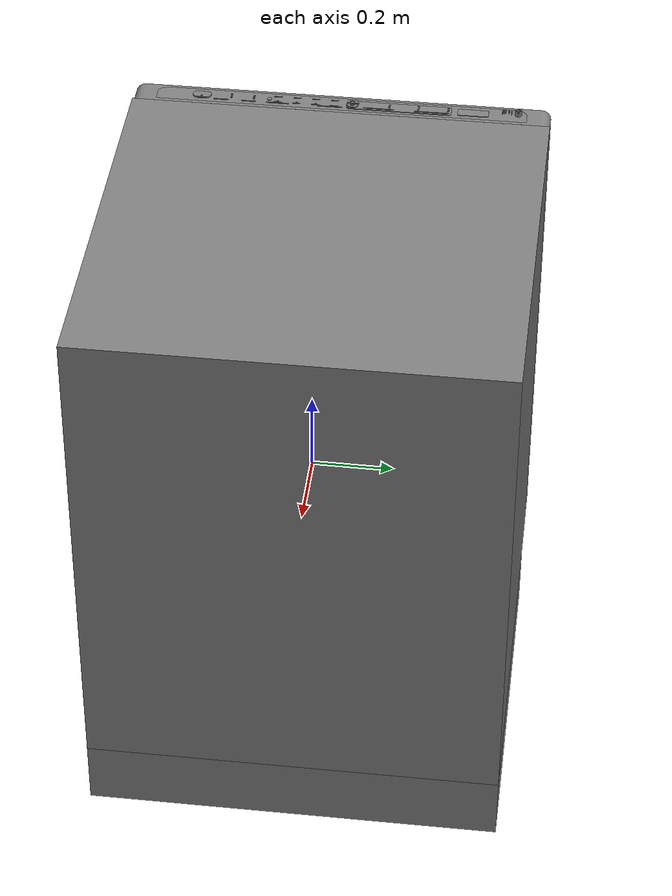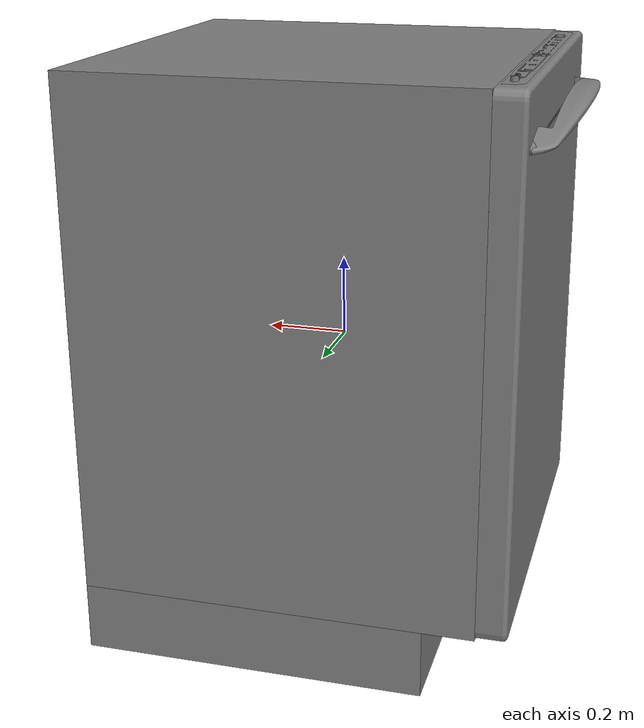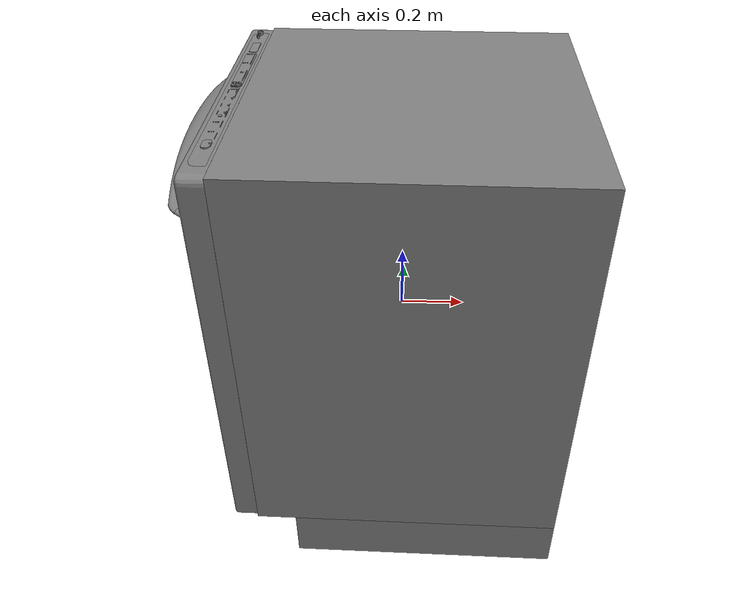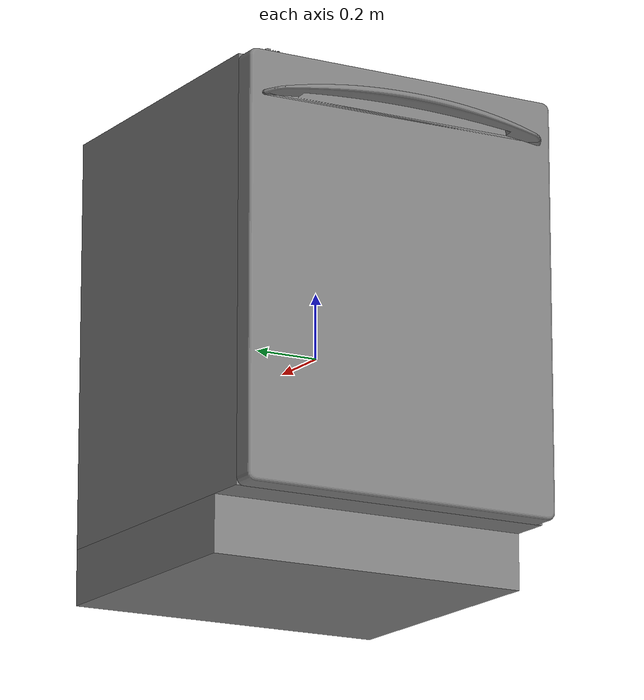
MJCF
<mujoco model="partnet_187d79cd04b2bdfddf3a1b0d597ce76e">
    <compiler angle="radian" />
    <size njmax="500" nconmax="100" />
    <option gravity="0 0 0"/>
    <asset>
        <mesh name="original-7" file="original-7.stl" />
        <mesh name="original-51" file="original-51.stl" />
        <mesh name="original-25" file="original-25.stl" />
        <mesh name="original-4" file="original-4.stl" />
        <mesh name="original-37" file="original-37.stl" />
        <mesh name="original-20" file="original-20.stl" />
        <mesh name="original-29" file="original-29.stl" />
        <mesh name="original-15" file="original-15.stl" />
        <mesh name="original-8" file="original-8.stl" />
        <mesh name="original-27" file="original-27.stl" />
        <mesh name="original-12" file="original-12.stl" />
        <mesh name="original-11" file="original-11.stl" />
        <mesh name="original-48" file="original-48.stl" />
        <mesh name="original-16" file="original-16.stl" />
        <mesh name="original-49" file="original-49.stl" />
        <mesh name="original-50" file="original-50.stl" />
        <mesh name="original-58" file="original-58.stl" />
        <mesh name="original-56" file="original-56.stl" />
        <mesh name="original-54" file="original-54.stl" />
        <mesh name="original-57" file="original-57.stl" />
        <mesh name="original-55" file="original-55.stl" />
        <mesh name="original-18" file="original-18.stl" />
        <mesh name="original-35" file="original-35.stl" />
        <mesh name="original-44" file="original-44.stl" />
        <mesh name="original-31" file="original-31.stl" />
        <mesh name="original-9" file="original-9.stl" />
        <mesh name="original-10" file="original-10.stl" />
        <mesh name="original-28" file="original-28.stl" />
        <mesh name="original-32" file="original-32.stl" />
        <mesh name="original-41" file="original-41.stl" />
        <mesh name="original-43" file="original-43.stl" />
        <mesh name="original-21" file="original-21.stl" />
        <mesh name="original-34" file="original-34.stl" />
        <mesh name="original-38" file="original-38.stl" />
        <mesh name="original-52" file="original-52.stl" />
        <mesh name="original-3" file="original-3.stl" />
        <mesh name="original-42" file="original-42.stl" />
        <mesh name="new-3" file="new-3.stl" />
        <mesh name="original-26" file="original-26.stl" />
        <mesh name="original-46" file="original-46.stl" />
        <mesh name="original-14" file="original-14.stl" />
        <mesh name="original-39" file="original-39.stl" />
        <mesh name="original-45" file="original-45.stl" />
        <mesh name="original-17" file="original-17.stl" />
        <mesh name="original-47" file="original-47.stl" />
        <mesh name="original-6" file="original-6.stl" />
        <mesh name="original-36" file="original-36.stl" />
        <mesh name="original-24" file="original-24.stl" />
        <mesh name="original-22" file="original-22.stl" />
        <mesh name="original-33" file="original-33.stl" />
        <mesh name="original-2" file="original-2.stl" />
        <mesh name="original-23" file="original-23.stl" />
        <mesh name="original-30" file="original-30.stl" />
        <mesh name="original-19" file="original-19.stl" />
        <mesh name="original-13" file="original-13.stl" />
        <mesh name="original-40" file="original-40.stl" />
        <mesh name="new-2" file="new-2.stl" />
        <mesh name="new-0" file="new-0.stl" />
        <mesh name="new-1" file="new-1.stl" />
    </asset>
    <worldbody>
        <body>
        <body name="object" >
        <geom quat="0.5 0.5 -0.5 -0.5" type="mesh" group="0" mesh="new-0" contype="0" conaffinity="0"/>
        <geom quat="0.5 0.5 -0.5 -0.5" type="mesh" group="0" mesh="new-1" contype="0" conaffinity="0"/>
        <body name="link_0" pos="-0.448191 -0.494577 -0.518989" quat="0.5 0.5 -0.5 -0.5" gravcomp="1">
            <inertial pos="-0.506723 0.631307 0.0501878" quat="0.498906 0.500975 -0.501695 0.498416" mass="94.238" diaginertia="22.9843 14.2193 8.85032" />
            <joint name="joint_0" pos="0 0 0" axis="1 0 0" limited="true" range="0 1.5708" />
            <geom pos="-0.494577 0.518989 -0.448191" type="mesh" group="0" mesh="original-7" />
            <geom pos="-0.494577 0.518989 -0.448191" type="mesh" group="0" mesh="original-51" />
            <geom pos="-0.494577 0.518989 -0.448191" type="mesh" group="0" mesh="original-25" />
            <geom pos="-0.494577 0.518989 -0.448191" type="mesh" group="0" mesh="original-4" />
            <geom pos="-0.494577 0.518989 -0.448191" type="mesh" group="0" mesh="original-37" />
            <geom pos="-0.494577 0.518989 -0.448191" type="mesh" group="0" mesh="original-20" />
            <geom pos="-0.494577 0.518989 -0.448191" type="mesh" group="0" mesh="original-29" />
            <geom pos="-0.494577 0.518989 -0.448191" type="mesh" group="0" mesh="original-15" />
            <geom pos="-0.494577 0.518989 -0.448191" type="mesh" group="0" mesh="original-8" />
            <geom pos="-0.494577 0.518989 -0.448191" type="mesh" group="0" mesh="original-27" />
            <geom pos="-0.494577 0.518989 -0.448191" type="mesh" group="0" mesh="original-12" />
            <geom pos="-0.494577 0.518989 -0.448191" type="mesh" group="0" mesh="original-11" />
            <geom pos="-0.494577 0.518989 -0.448191" type="mesh" group="0" mesh="original-48" />
            <geom pos="-0.494577 0.518989 -0.448191" type="mesh" group="0" mesh="original-16" />
            <geom pos="-0.494577 0.518989 -0.448191" type="mesh" group="0" mesh="original-49" />
            <geom pos="-0.494577 0.518989 -0.448191" type="mesh" group="0" mesh="original-50" />
            <geom pos="-0.494577 0.518989 -0.448191" type="mesh" group="0" mesh="original-58" />
            <geom pos="-0.494577 0.518989 -0.448191" type="mesh" group="0" mesh="original-56" />
            <geom pos="-0.494577 0.518989 -0.448191" type="mesh" group="0" mesh="original-54" />
            <geom pos="-0.494577 0.518989 -0.448191" type="mesh" group="0" mesh="original-57" />
            <geom pos="-0.494577 0.518989 -0.448191" type="mesh" group="0" mesh="original-55" />
            <geom pos="-0.494577 0.518989 -0.448191" type="mesh" group="0" mesh="original-18" />
            <geom pos="-0.494577 0.518989 -0.448191" type="mesh" group="0" mesh="original-35" />
            <geom pos="-0.494577 0.518989 -0.448191" type="mesh" group="0" mesh="original-44" />
            <geom pos="-0.494577 0.518989 -0.448191" type="mesh" group="0" mesh="original-31" />
            <geom pos="-0.494577 0.518989 -0.448191" type="mesh" group="0" mesh="original-9" />
            <geom pos="-0.494577 0.518989 -0.448191" type="mesh" group="0" mesh="original-10" />
            <geom pos="-0.494577 0.518989 -0.448191" type="mesh" group="0" mesh="original-28" />
            <geom pos="-0.494577 0.518989 -0.448191" type="mesh" group="0" mesh="original-32" />
            <geom pos="-0.494577 0.518989 -0.448191" type="mesh" group="0" mesh="original-41" />
            <geom pos="-0.494577 0.518989 -0.448191" type="mesh" group="0" mesh="original-43" />
            <geom pos="-0.494577 0.518989 -0.448191" type="mesh" group="0" mesh="original-21" />
            <geom pos="-0.494577 0.518989 -0.448191" type="mesh" group="0" mesh="original-34" />
            <geom pos="-0.494577 0.518989 -0.448191" type="mesh" group="0" mesh="original-38" />
            <geom pos="-0.494577 0.518989 -0.448191" type="mesh" group="0" mesh="original-52" />
            <geom pos="-0.494577 0.518989 -0.448191" type="mesh" group="0" mesh="original-3" />
            <geom pos="-0.494577 0.518989 -0.448191" type="mesh" group="0" mesh="original-42" />
            <geom pos="-0.494577 0.518989 -0.448191" type="mesh" group="0" mesh="new-3" />
            <geom pos="-0.494577 0.518989 -0.448191" type="mesh" group="0" mesh="original-26" />
            <geom pos="-0.494577 0.518989 -0.448191" type="mesh" group="0" mesh="original-46" />
            <geom pos="-0.494577 0.518989 -0.448191" type="mesh" group="0" mesh="original-14" />
            <geom pos="-0.494577 0.518989 -0.448191" type="mesh" group="0" mesh="original-39" />
            <geom pos="-0.494577 0.518989 -0.448191" type="mesh" group="0" mesh="original-45" />
            <geom pos="-0.494577 0.518989 -0.448191" type="mesh" group="0" mesh="original-17" />
            <geom pos="-0.494577 0.518989 -0.448191" type="mesh" group="0" mesh="original-47" />
            <geom pos="-0.494577 0.518989 -0.448191" type="mesh" group="0" mesh="original-6" />
            <geom pos="-0.494577 0.518989 -0.448191" type="mesh" group="0" mesh="original-36" />
            <geom pos="-0.494577 0.518989 -0.448191" type="mesh" group="0" mesh="original-24" />
            <geom pos="-0.494577 0.518989 -0.448191" type="mesh" group="0" mesh="original-22" />
            <geom pos="-0.494577 0.518989 -0.448191" type="mesh" group="0" mesh="original-33" />
            <geom pos="-0.494577 0.518989 -0.448191" type="mesh" group="0" mesh="original-2" />
            <geom pos="-0.494577 0.518989 -0.448191" type="mesh" group="0" mesh="original-23" />
            <geom pos="-0.494577 0.518989 -0.448191" type="mesh" group="0" mesh="original-30" />
            <geom pos="-0.494577 0.518989 -0.448191" type="mesh" group="0" mesh="original-19" />
            <geom pos="-0.494577 0.518989 -0.448191" type="mesh" group="0" mesh="original-13" />
            <geom pos="-0.494577 0.518989 -0.448191" type="mesh" group="0" mesh="original-40" />
            <geom pos="-0.494577 0.518989 -0.448191" type="mesh" group="0" mesh="new-2" />
        </body>
    </body>
        <site name="bottom_site" pos="0 0 -0.3" rgba="0 0 0 0" size="0.005"/>
        <site name="top_site" pos="0 0 0.3" rgba="0 0 0 0" size="0.005"/>
        <site name="horizontal_radius_site" pos="0.3 0 0" rgba="0 0 0 0" size="0.1"/>
    </body>
    </worldbody>
</mujoco>
